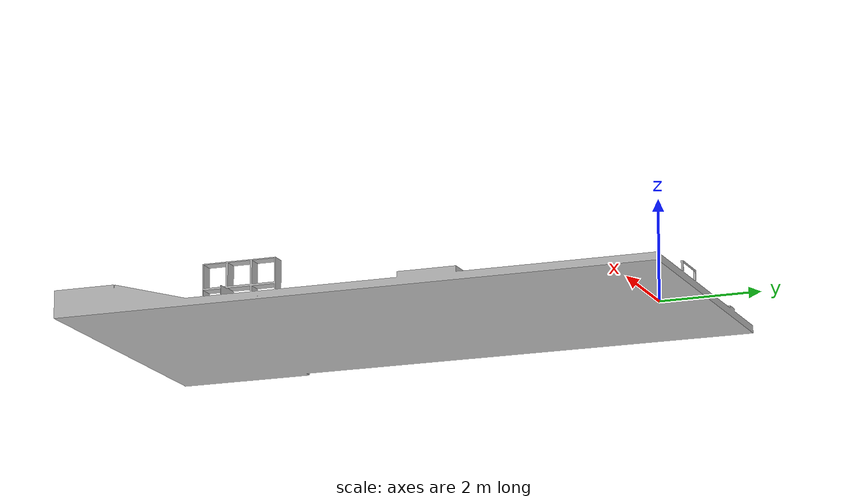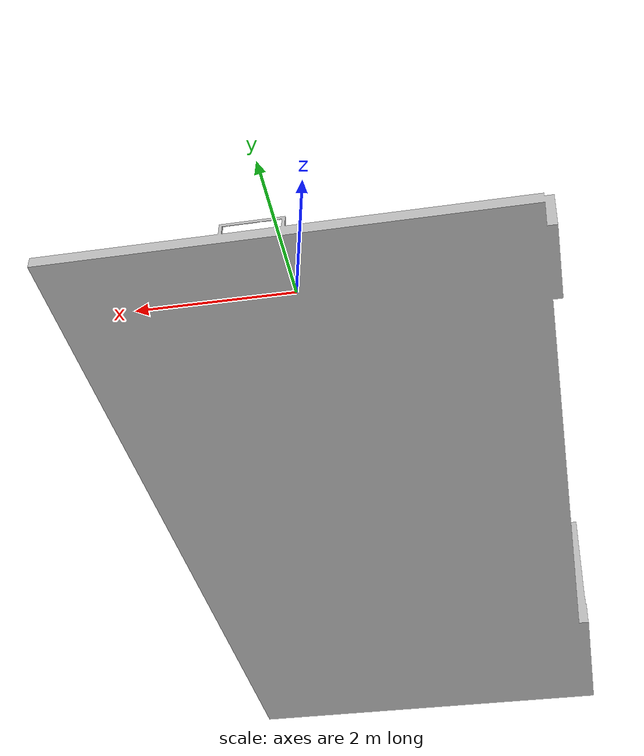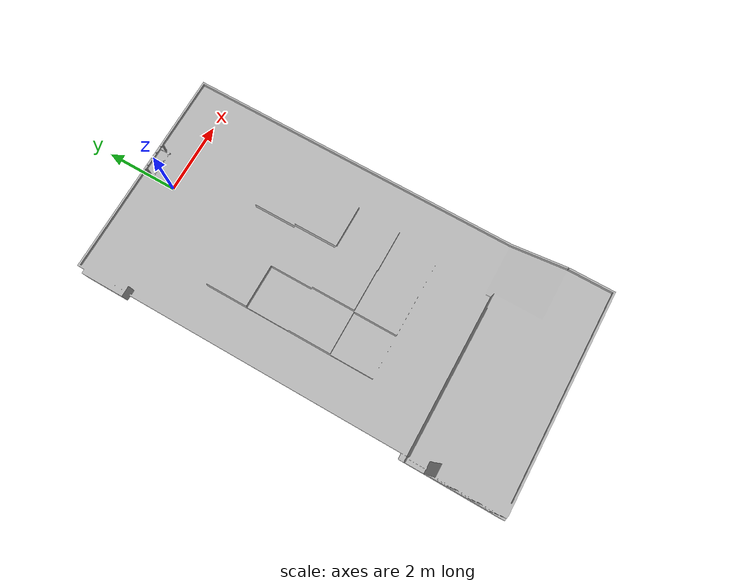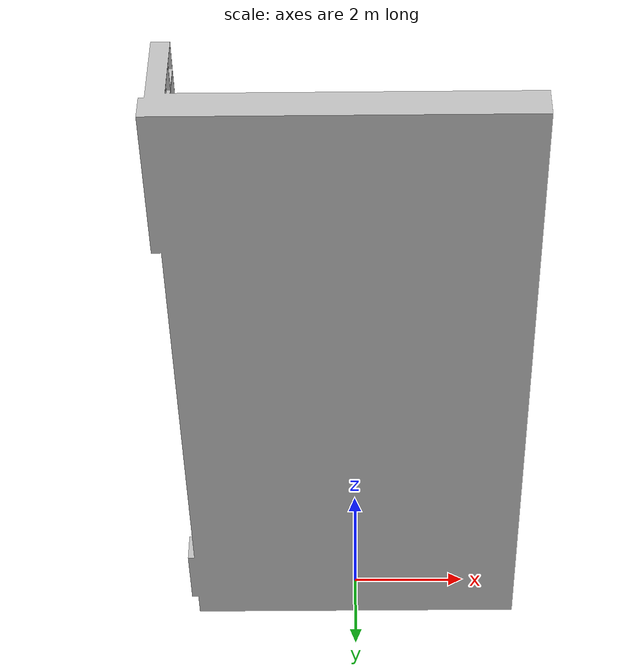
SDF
<?xml version="1.0" ?>
<sdf version="1.11">
  <model name="arena">
    <static>true</static>
    <link name="link">
      <collision name="collision">
        <pose>0 0 0.0 0 0 0</pose>
        <geometry>
          <mesh>
            <uri>All- Zone-arena.dae</uri>
            <scale>0.001 0.001 0.001</scale>
          </mesh>
        </geometry>
      </collision>
      <visual name="visual">
        <geometry>
          <mesh>
            <uri>All- Zone-arena.dae</uri>
            <scale>0.001 0.001 0.001</scale>
          </mesh>
        </geometry>
      </visual>
    </link>
  </model>
</sdf>
